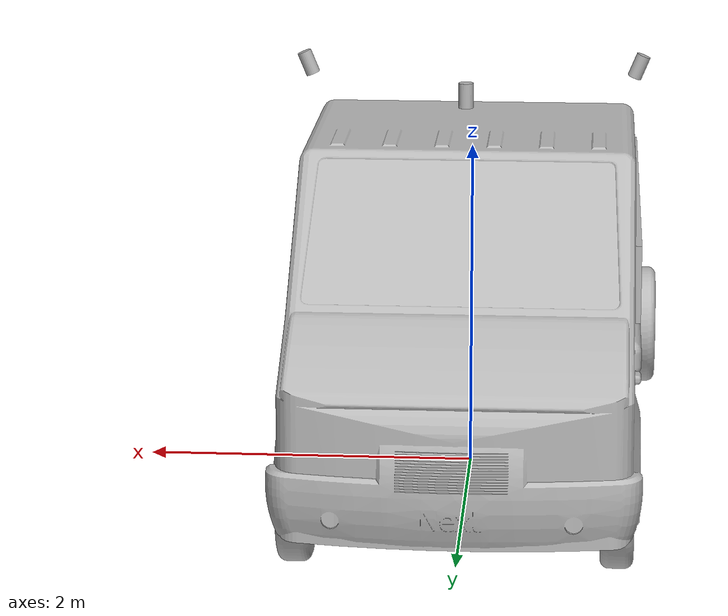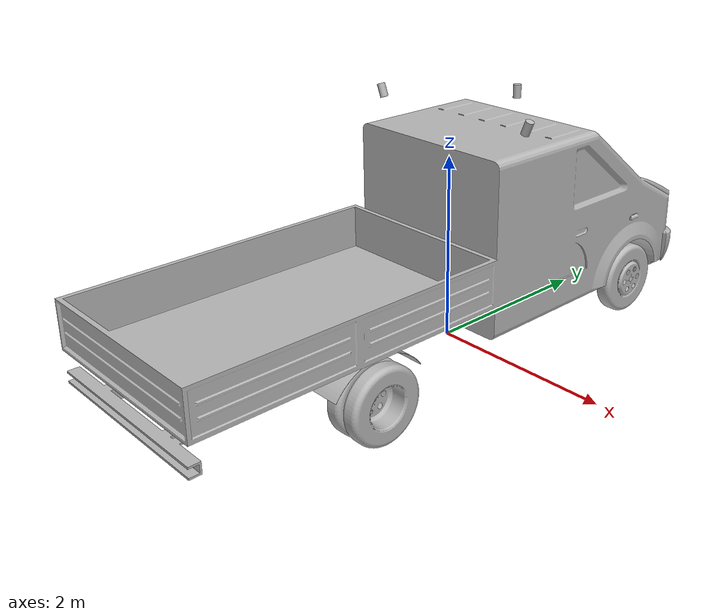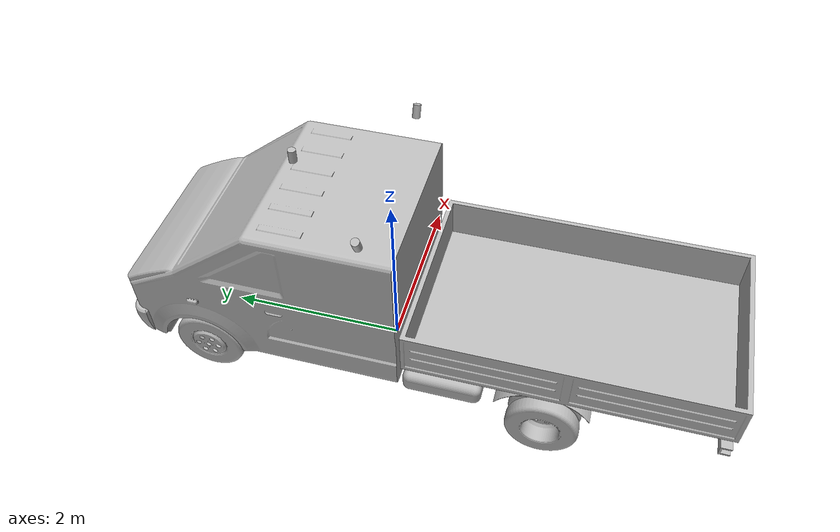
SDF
<?xml version="1.0"?>
<sdf version="1.5">

  <model name="gazel">

    <pose>0 0 0.0 0 0 0</pose>

    <link name='base_link' />

    <joint name='chassis_link_joint' type='fixed'>
      <pose>1e-06 0.07307 0.65096 0 -0 0</pose>
      <parent>base_link</parent>
      <child>chassis_link</child>
    </joint>

    <joint name="hokuyo_joint" type="fixed">
      <parent>base_link</parent>
      <child>hokuyo_link</child>
      <pose>0 2.34 0.72 0 0 1.5708</pose>
      <axis>
        <xyz>0 0 1</xyz>
      </axis>
    </joint>

    <joint name="ouster_0_joint" type="fixed">
      <parent>base_link</parent>
      <child>ouster_0</child>
      <pose>0 1 2.5 0 0 0</pose>
      <axis>
        <xyz>0 0 1</xyz>
      </axis>
    </joint>

    <joint name="ouster_1_joint" type="fixed">
      <parent>base_link</parent>
      <child>ouster_1</child>
      <pose>1 0 2.5 0 0.39269 0</pose>
      <axis>
        <xyz>0 0 1</xyz>
      </axis>
    </joint>

    <joint name="ouster_2_joint" type="fixed">
      <parent>base_link</parent>
      <child>ouster_2</child>
      <pose>-1 0 2.5 0 -0.39269 0</pose>
      <axis>
        <xyz>0 0 1</xyz>
      </axis>
    </joint>

    <joint name="odom_joint" type="fixed">
      <parent>base_link</parent>
      <child>odometry</child>
      <pose>0 -1.890375 0 0 0 0</pose>
      <axis>
        <xyz>0 0 1</xyz>
      </axis>
    </joint>

    <joint name="front_camera_joint" type="fixed">
      <parent>base_link</parent>
      <child>front_camera_link</child>
      <pose>0 0 0 0 0 0</pose>
      <axis>
        <xyz>0 0 1</xyz>
      </axis>
    </joint>

  <link name="odometry" />

  <link name="front_camera_link">
  <pose>0 0 1.4 0 0 1.57</pose>

  <visual name="camera_visual">
    <pose relative_to='front_camera_joint'> 0 0 0 0 0 0 </pose>
    <geometry>
      <box>
        <size>0.015 0.08 0.022</size>
      </box>
    </geometry>
    <material>
      <ambient>0 0 0 1.0</ambient>
      <diffuse>0 0 0 1.0</diffuse>
      <specular>0.0 0.0 0.0 1.0</specular>
      <emissive>0.0 0.0 0.0 1.0</emissive>
    </material>
  </visual>

  <sensor name="front_camera" type="camera">
    <always_on>true</always_on>
    <visualize>true</visualize>
    <update_rate>30</update_rate>
    <camera name="camera">
      <horizontal_fov>1.2962634</horizontal_fov>
      <image>
        <width>1280</width>
        <height>720</height>
        <format>R8G8B8</format>
      </image>
      <clip>
        <near>0.02</near>
        <far>500</far>
      </clip>
      <noise>
        <type>gaussian</type>
        <!-- Noise is sampled independently per pixel on each frame.
             That pixel's noise value is added to each of its color
              channels, which at that point lie in the range [0,1]. -->
        <mean>0.0</mean>
        <stddev>0.007</stddev>
      </noise>
    </camera>

    <plugin name="front_camera_controller" filename="libgazebo_ros_camera.so">
        <alwaysOn>false</alwaysOn>
        <updateRate>0.0</updateRate>
        <cameraName>/prius/front_camera</cameraName>
        <imageTopicName>image_raw</imageTopicName>
        <cameraInfoTopicName>/prius/front_camera/camera_info</cameraInfoTopicName>
        <frameName>front_camera_link</frameName>
        <hackBaseline>0.07</hackBaseline>
        <distortionK1>0.0</distortionK1>
        <distortionK2>0.0</distortionK2>
        <distortionK3>0.0</distortionK3>
        <distortionT1>0.0</distortionT1>
        <distortionT2>0.0</distortionT2>
      </plugin>

  </sensor>

  </link>

     <link name="ouster_0">

      <inertial>
        <pose relative_to='ouster_0_joint'> 0 0 0 0 0 0 </pose>
        <mass>1.01</mass>
        <inertia>
          <ixx>0.00219251</ixx>
          <ixy>0</ixy>
          <ixz>0</ixz>
          <iyy>0.00219251</iyy>
          <iyz>0</iyz>
          <izz>0.000910464</izz>
        </inertia>
      </inertial>

      <collision name='base_link_fixed_joint_lump_ouster_0_joint_base_link_collision'>
         <pose relative_to='ouster_0_joint'> 0 0 0 0 0 0 </pose>
        <geometry>
          <cylinder>
            <length>0.14424</length>
            <radius>0.04267</radius>
          </cylinder>
        </geometry>
      </collision>

      <visual name='base_link_fixed_joint_lump_ouster_0_joint_base_link_visual'>
        <pose relative_to='ouster_0_joint'> 0 0 0 0 0 0 </pose>
        <geometry>
          <cylinder>
            <length>0.14424</length>
            <radius>0.04267</radius>
          </cylinder>
        </geometry>
      </visual>

      <sensor type="gpu_ray" name="ouster_0">

        <visualize>false</visualize>
        <update_rate>20</update_rate>
        <ray>
          <scan>
            <horizontal>
              <samples>1024</samples>
              <resolution>1</resolution>
              <min_angle>-1.57</min_angle>
              <max_angle>4.71</max_angle>
            </horizontal>
            <vertical>
              <samples>64</samples>
              <resolution>1</resolution>
              <min_angle>-0.392699082</min_angle>
              <max_angle>0.392699082</max_angle>
            </vertical>
          </scan>
          <range>
            <min>0.5</min>
            <max>15.0</max>
            <resolution>1</resolution>
          </range>
          <noise>
            <type>gaussian</type>
            <mean>0</mean>
            <stddev>0</stddev>
          </noise>
        </ray>
        <plugin name='gazebo_ros_laser_controller' filename='libgazebo_ros_velodyne_laser.so'>
          <ros>
            <namespace>/ouster_0</namespace>
            <remapping>~/out:=/ouster_0_points</remapping>
          </ros>
          <tf_prefix/>
          <frame_name>ouster_0</frame_name>
          <organize_cloud>0</organize_cloud>
          <min_range>0.5</min_range>
          <max_range>15.0</max_range>
          <gaussian_noise>0.008</gaussian_noise>
        </plugin>
        <pose relative_to='ouster_0_joint'> 0 0 0 0 0 0 </pose>
      </sensor>
    </link>

    <link name="ouster_1">

      <inertial>
        <pose relative_to='ouster_1_joint'> 0 0 0 0 0 0 </pose>
        <mass>1.01</mass>
        <inertia>
          <ixx>0.00219251</ixx>
          <ixy>0</ixy>
          <ixz>0</ixz>
          <iyy>0.00219251</iyy>
          <iyz>0</iyz>
          <izz>0.000910464</izz>
        </inertia>
      </inertial>

      <collision name='base_link_fixed_joint_lump_ouster_1_joint_base_link_collision'>
         <pose relative_to='ouster_1_joint'> 0 0 0 0 0 0 </pose>
        <geometry>
          <cylinder>
            <length>0.14424</length>
            <radius>0.04267</radius>
          </cylinder>
        </geometry>
      </collision>

      <visual name='base_link_fixed_joint_lump_ouster_1_joint_base_link_visual'>
        <pose relative_to='ouster_1_joint'> 0 0 0 0 0 0 </pose>
        <geometry>
          <cylinder>
            <length>0.14424</length>
            <radius>0.04267</radius>
          </cylinder>
        </geometry>
      </visual>

      <sensor type="gpu_ray" name="ouster_1">

        <visualize>false</visualize>
        <update_rate>20</update_rate>
        <ray>
          <scan>
            <horizontal>
              <samples>1024</samples>
              <resolution>1</resolution>
              <min_angle>-1.57</min_angle>
              <max_angle>4.71</max_angle>
            </horizontal>
            <vertical>
              <samples>64</samples>
              <resolution>1</resolution>
              <min_angle>-0.392699082</min_angle>
              <max_angle>0.392699082</max_angle>
            </vertical>
          </scan>
          <range>
            <min>1.0</min>
            <max>15.0</max>
            <resolution>1</resolution>
          </range>
          <noise>
            <type>gaussian</type>
            <mean>0</mean>
            <stddev>0</stddev>
          </noise>
        </ray>
        <plugin name='gazebo_ros_laser_controller' filename='libgazebo_ros_velodyne_laser.so'>
          <ros>
            <namespace>/ouster_1</namespace>
            <remapping>~/out:=/ouster_1_points</remapping>
          </ros>
          <tf_prefix/>
          <frame_name>ouster_1</frame_name>
          <organize_cloud>0</organize_cloud>
          <min_range>2.5</min_range>
          <max_range>15.0</max_range>
          <gaussian_noise>0.008</gaussian_noise>
        </plugin>
        <pose relative_to='ouster_1_joint'> 0 0 0 0 0 0 </pose>
      </sensor>
    </link>

    <link name="ouster_2">

      <inertial>
        <pose relative_to='ouster_2_joint'> 0 0 0 0 0 0 </pose>
        <mass>1.01</mass>
        <inertia>
          <ixx>0.00219251</ixx>
          <ixy>0</ixy>
          <ixz>0</ixz>
          <iyy>0.00219251</iyy>
          <iyz>0</iyz>
          <izz>0.000910464</izz>
        </inertia>
      </inertial>

      <collision name='base_link_fixed_joint_lump_ouster_2_joint_base_link_collision'>
         <pose relative_to='ouster_2_joint'> 0 0 0 0 0 0 </pose>
        <geometry>
          <cylinder>
            <length>0.14424</length>
            <radius>0.04267</radius>
          </cylinder>
        </geometry>
      </collision>

      <visual name='base_link_fixed_joint_lump_ouster_2_joint_base_link_visual'>
        <pose relative_to='ouster_2_joint'> 0 0 0 0 0 0 </pose>
        <geometry>
          <cylinder>
            <length>0.14424</length>
            <radius>0.04267</radius>
          </cylinder>
        </geometry>
      </visual>

      <sensor type="gpu_ray" name="ouster_2">

        <visualize>false</visualize>
        <update_rate>20</update_rate>
        <ray>
          <scan>
            <horizontal>
              <samples>1024</samples>
              <resolution>1</resolution>
              <min_angle>-1.57</min_angle>
              <max_angle>4.71</max_angle>
            </horizontal>
            <vertical>
              <samples>64</samples>
              <resolution>1</resolution>
              <min_angle>-0.392699082</min_angle>
              <max_angle>0.392699082</max_angle>
            </vertical>
          </scan>
          <range>
            <min>1.0</min>
            <max>15.0</max>
            <resolution>1</resolution>
          </range>
          <noise>
            <type>gaussian</type>
            <mean>0</mean>
            <stddev>0</stddev>
          </noise>
        </ray>
        <plugin name='gazebo_ros_laser_controller' filename='libgazebo_ros_velodyne_laser.so'>
          <ros>
            <namespace>/ouster_2</namespace>
            <remapping>~/out:=/ouster_2_points</remapping>
          </ros>
          <tf_prefix/>
          <frame_name>ouster_2</frame_name>
          <organize_cloud>0</organize_cloud>
          <min_range>2.5</min_range>
          <max_range>15.0</max_range>
          <gaussian_noise>0.008</gaussian_noise>
        </plugin>
        <pose relative_to='ouster_2_joint'> 0 0 0 0 0 0 </pose>
      </sensor>
    </link>

    <link name="hokuyo_link">
      <sensor name="head_hokuyo_sensor" type="ray">
      <pose relative_to='hokuyo_joint'>0 0 0 0 0 0</pose>
        <always_on>false</always_on>
        <visualize>false</visualize>
        <update_rate>40</update_rate>
        <ray>
          <scan>
            <horizontal>
              <samples>720</samples>
              <resolution>1.000000</resolution>
              <min_angle>-1.570796</min_angle>
              <max_angle>1.570796</max_angle>
            </horizontal>
          </scan>
          <range>
            <min>0.120000</min>
            <max>30.0</max>
            <resolution>0.010</resolution>
          </range>
          <noise>
            <type>gaussian</type>
            <mean>0.0</mean>
            <stddev>0.01</stddev>
          </noise>
        </ray>
        <plugin name="gazebo_ros_head_hokuyo_controller" filename="libgazebo_ros_ray_sensor.so">
          <ros>
            <remapping>~/out:=scan</remapping>
          </ros>
          <output_type>sensor_msgs/LaserScan</output_type>
          <frame_name>hokuyo_link</frame_name>
        </plugin>
      </sensor>
    </link>

    <link name='chassis_link'>
      <inertial>
        <pose>1e-06 0.07307 0.65096 0 -0 0</pose>
        <mass>1580</mass>
        <inertia>
          <ixx>1997.86</ixx>
          <ixy>-3e-05</ixy>
          <ixz>-1e-06</ixz>
          <iyy>442.769</iyy>
          <iyz>62.5206</iyz>
          <izz>2238.05</izz>
        </inertia>
      </inertial>
      <collision name='chassis_link_fixed_joint_lump__chassis_link_collision'>
        <pose> -1.37 -1.2 0.2 0 -0 0</pose>
        <geometry>
          <mesh>
            <scale>0.001 0.001 0.001</scale>
            <uri>model://gazel/meshes/Next.stl</uri>
          </mesh>
        </geometry>
        <surface>
          <contact>
            <ode />
          </contact>
          <friction>
            <ode>
              <mu>0.2</mu>
              <mu2>0.2</mu2>
            </ode>
          </friction>
        </surface>
      </collision>

      <visual name='chassis_link_fixed_joint_lump__chassis_link_visual'>
        <pose> -1.37 -1.2 0.2 0 -0 0</pose>
        <geometry>
          <mesh>
            <scale>0.001 0.001 0.001</scale>
            <uri>model://gazel/meshes/Next.stl</uri>
          </mesh>
        </geometry>
      </visual>

      <self_collide>1</self_collide>
    </link>

    <joint name='bl_axle' type='revolute'>
      <pose relative_to='chassis_link'>-0.85 -1.890375 0.387 0 -0 0</pose>
      <parent>chassis_link</parent>
      <child>bl_1</child>
      <axis>
        <xyz>-1 0 0</xyz>
        <dynamics>
          <friction>12.031606150200002</friction>
        </dynamics>
      </axis>
    </joint>
    <link name='bl_1'>
      <pose relative_to='bl_axle'>0 0 0 0 -0 0</pose>
      <inertial>
        <pose>-0.0377 0 -0 0 -0 0</pose>
        <mass>24.5</mass>
        <inertia>
          <ixx>1.84514</ixx>
          <ixy>0</ixy>
          <ixz>0</ixz>
          <iyy>1.04961</iyy>
          <iyz>0</iyz>
          <izz>1.04961</izz>
        </inertia>
      </inertial>
      <collision name='bl_1_collision'>
        <pose relative_to='bl_axle'>0 0 0 0 1.5708 0</pose>
        <geometry>
          <cylinder>
            <radius>.387</radius>
            <length>.22</length>
          </cylinder>
        </geometry>
        <surface>
          <contact>
            <ode />
          </contact>
          <friction>
            <ode>
              <mu>1.7</mu>
              <mu2>1.7</mu2>
            </ode>
          </friction>
        </surface>
      </collision>
      <visual name='bl_1_visual'>
        <pose>0 0 0 0 -0 0</pose>
        <geometry>
          <mesh>
            <scale>0.001 0.001 0.001</scale>
            <uri>model://gazel/meshes/back2.stl</uri>
          </mesh>
        </geometry>
      </visual>
      <self_collide>1</self_collide>
    </link>
    <joint name='br_axle' type='revolute'>
      <pose relative_to='chassis_link'>0.85 -1.890375 0.387 0 -0 0</pose>
      <parent>chassis_link</parent>
      <child>br_1</child>
      <axis>
        <xyz>-1 0 0</xyz>
        <dynamics>
          <friction>12.031606150200002</friction>
        </dynamics>
      </axis>
    </joint>
    <link name='br_1'>
      <pose relative_to='br_axle'>0 0 0 0 -0 0</pose>
      <inertial>
        <pose>-0.0377 0 -0 0 -0 0</pose>
        <mass>24.5</mass>
        <inertia>
          <ixx>1.84514</ixx>
          <ixy>0</ixy>
          <ixz>0</ixz>
          <iyy>1.04961</iyy>
          <iyz>0</iyz>
          <izz>1.04961</izz>
        </inertia>
      </inertial>
      <collision name='br_1_collision'>
        <pose relative_to='br_axle'>0 0 0 0 1.5708 0</pose>
        <geometry>
          <cylinder>
            <radius>.387</radius>
            <length>.22</length>
          </cylinder>
        </geometry>
        <surface>
          <contact>
            <ode />
          </contact>
          <friction>
            <ode>
              <mu>1.7</mu>
              <mu2>1.7</mu2>
            </ode>
          </friction>
        </surface>
      </collision>
      <visual name='br_1_visual'>
        <pose>0 0 0 0 -0 0</pose>
        <geometry>
          <mesh>
            <scale>0.001 0.001 0.001</scale>
            <uri>model://gazel/meshes/back1.stl</uri>
          </mesh>
        </geometry>
      </visual>
      <self_collide>1</self_collide>
    </link>
    <joint name='l_steer' type='revolute'>
      <pose relative_to='chassis_link'>-0.85 1.890375 0.387 0 -0 0</pose>
      <parent>chassis_link</parent>
      <child>l_steer_1</child>
      <axis>
        <xyz>0 0 1</xyz>
        <limit>
          <lower>-0.95</lower>
          <upper>0.95</upper>
        </limit>
        <dynamics>
          <friction>18.0474092253</friction>
        </dynamics>
      </axis>
    </joint>
    <link name='l_steer_1'>
      <pose relative_to='l_steer'>0 0 0 0 -0 0</pose>
      <inertial>
        <pose>0.003381 0 0.02162 0 -0 0</pose>
        <mass>1</mass>
        <inertia>
          <ixx>1</ixx>
          <ixy>0</ixy>
          <ixz>0</ixz>
          <iyy>1</iyy>
          <iyz>0</iyz>
          <izz>1</izz>
        </inertia>
      </inertial>
      <self_collide>1</self_collide>
    </link>

    <joint name='fl_axle' type='revolute'>
      <pose relative_to='l_steer_1'>-0.05 0 0 0 -0 0</pose>
      <parent>l_steer_1</parent>
      <child>fl_1</child>
      <axis>
        <xyz>-1 0 0</xyz>
        <dynamics>
          <friction>12.031606150200002</friction>
        </dynamics>
      </axis>
    </joint>
    <link name='fl_1'>
      <pose relative_to='fl_axle'>0 0 0 0 -0 0</pose>
      <inertial>
        <pose>-0.0377 0 -0 0 -0 0</pose>
        <mass>24.5</mass>
        <inertia>
          <ixx>1.84514</ixx>
          <ixy>0</ixy>
          <ixz>0</ixz>
          <iyy>1.04961</iyy>
          <iyz>0</iyz>
          <izz>1.04961</izz>
        </inertia>
      </inertial>
      <collision name='fl_1_collision'>
        <pose>0 0 0 0 0 0</pose>
        <geometry>
          <mesh>
            <scale>0.001 0.001 0.001</scale>
            <uri>model://gazel/meshes/front1.stl</uri>
          </mesh>
        </geometry>
        <surface>
          <contact>
            <ode />
          </contact>
          <friction>
            <ode>
              <mu>1.1</mu>
              <mu2>1.1</mu2>
            </ode>
          </friction>
        </surface>
      </collision>
      <visual name='fl_1_visual'>
        <pose>0 0 0 0 0 0</pose>
        <geometry>
          <mesh>
            <scale>0.001 0.001 0.001</scale>
            <uri>model://gazel/meshes/front1.stl</uri>
          </mesh>
        </geometry>
      </visual>
      <self_collide>1</self_collide>
    </link>
    <joint name='r_steer' type='revolute'>
      <pose relative_to='chassis_link'>0.85 1.890375 0.387 0 -0 0</pose>
      <parent>chassis_link</parent>
      <child>r_steer_1</child>
      <axis>
        <xyz>0 0 1</xyz>
        <limit>
          <lower>-0.95</lower>
          <upper>0.95</upper>
        </limit>
        <dynamics>
          <damping>0.01</damping>
          <friction>18.0474092253</friction>
        </dynamics>
      </axis>
    </joint>
    <link name='r_steer_1'>
      <pose relative_to='r_steer'>0 0 0 0 -0 0</pose>
      <inertial>
        <pose>0.003381 0 0.02162 0 -0 0</pose>
        <mass>1</mass>
        <inertia>
          <ixx>1</ixx>
          <ixy>0</ixy>
          <ixz>0</ixz>
          <iyy>1</iyy>
          <iyz>0</iyz>
          <izz>1</izz>
        </inertia>
      </inertial>
      <self_collide>1</self_collide>
    </link>
    <joint name='fr_axle' type='revolute'>
      <pose relative_to='r_steer_1'>0.05 0 0 0 -0 0</pose>
      <parent>r_steer_1</parent>
      <child>fr_1</child>
      <axis>
        <xyz>-1 0 0</xyz>
        <dynamics>
          <friction>12.031606150200002</friction>
        </dynamics>
      </axis>
    </joint>
    <link name='fr_1'>
      <pose relative_to='fr_axle'>0 0 0 0 -0 0</pose>
      <inertial>
        <pose>-0.0377 0 -0 0 -0 0</pose>
        <mass>24.5</mass>
        <inertia>
          <ixx>1.84514</ixx>
          <ixy>0</ixy>
          <ixz>0</ixz>
          <iyy>1.04961</iyy>
          <iyz>0</iyz>
          <izz>1.04961</izz>
        </inertia>
      </inertial>
      <collision name='fr_1_collision'>
        <pose> 0 0 0 0 -0 0</pose>
        <geometry>
          <mesh>
            <scale>0.001 0.001 0.001</scale>
            <uri>model://gazel/meshes/front2.stl</uri>
          </mesh>
        </geometry>
        <surface>
          <contact>
            <ode />
          </contact>
          <friction>
            <ode>
              <mu>1.7</mu>
              <mu2>1.7</mu2>
            </ode>
          </friction>
        </surface>
      </collision>
      <visual name='fr_1_visual'>
        <pose> 0 0 0 0 -0 0</pose>
        <geometry>
          <mesh>
            <scale>0.001 0.001 0.001</scale>
            <uri>model://gazel/meshes/front2.stl</uri>
          </mesh>
        </geometry>
      </visual>
      <self_collide>1</self_collide>
    </link>

    <link name="steering_wheel" />

    <joint name="steering_joint" type="revolute">
      <pose>-0.002 0 0 0 0 0</pose>
      <parent>chassis_link</parent>
      <child>steering_wheel</child>
      <axis>
        <xyz>-0.964118 0.000768 0.265556</xyz>
        <limit>
          <lower>-100</lower>
          <upper>100</upper>
        </limit>
        <dynamics>
          <damping>1.0</damping>
        </dynamics>
        <use_parent_model_frame>true</use_parent_model_frame>
      </axis>
      <physics>
        <ode>
          <cfm_damping>1</cfm_damping>
        </ode>
      </physics>
    </joint>

    <plugin name='ackermann_drive' filename='libgazebo_ros_ackermann_drive.so'>

      <ros>
        <namespace>autocar</namespace>
        <remapping>cmd_vel:=cmd_vel</remapping>
        <remapping>odom:=odom</remapping>
        <remapping>distance:=distance</remapping>
      </ros>

      <update_rate>100.0</update_rate>

      <!-- wheels -->
      <front_left_joint>fl_axle</front_left_joint>
      <front_right_joint>fr_axle</front_right_joint>
      <rear_left_joint>bl_axle</rear_left_joint>
      <rear_right_joint>br_axle</rear_right_joint>
      <left_steering_joint>l_steer</left_steering_joint>
      <right_steering_joint>r_steer</right_steering_joint>
      <steering_wheel_joint>steering_joint</steering_wheel_joint>

      <!-- Max absolute steer angle for tyre in radians-->
      <!-- Any cmd_vel angular z greater than this would be capped -->
      <max_steer>0.85</max_steer>

      <!-- Max absolute steering angle of steering wheel -->
      <!-- Max absolute steering angle of steering wheel -->
      <max_steering_angle>7.85</max_steering_angle>

      <!-- Max absolute linear speed in m/s -->
      <max_speed>20</max_speed>

      <!-- PID tuning -->
      <left_steering_pid_gain>4000 0 1</left_steering_pid_gain>
      <left_steering_i_range>0 0</left_steering_i_range>
      <right_steering_pid_gain>4000 0 1</right_steering_pid_gain>
      <right_steering_i_range>0 0</right_steering_i_range>
      <linear_velocity_pid_gain>4000 0 1</linear_velocity_pid_gain>
      <linear_velocity_i_range>0 0</linear_velocity_i_range>

      <!-- output -->
      <publish_odom>true</publish_odom>
      <publish_odom_tf>true</publish_odom_tf>
      <publish_wheel_tf>true</publish_wheel_tf>
      <publish_distance>false</publish_distance>

      <odometry_frame>odom</odometry_frame>
      <robot_base_frame>base_link</robot_base_frame>

    </plugin>

  </model>

</sdf>
